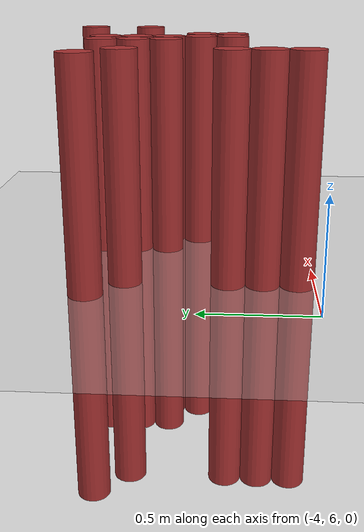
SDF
<sdf version="1.6">
 <world name="default">
  <model name="ground_plane">
   <static>1</static>
   <link name="link">
    <collision name="collision">
     <geometry><plane><normal>0 0 1</normal><size>100 100</size></plane></geometry>
     <surface><friction><ode><mu>100</mu><mu2>50</mu2></ode></friction></surface>
    </collision>
    <visual name="visual">
     <cast_shadows>0</cast_shadows>
     <geometry><plane><normal>0 0 1</normal><size>100 100</size></plane></geometry>
     <material>
      <script><uri>file://media/materials/scripts/gazebo.material</uri><name>Gazebo/Grey</name></script>
     </material>
    </visual>
   </link>
  </model>
  <model name="unit_cylinder_150">
   <static>1</static>
   <pose>-3.825000 6.975000 0.000000 0.000000 0.000000 0.000000</pose>
   <link name="link">
    <inertial>
     <mass>1</mass>
     <inertia><ixx>0.145833</ixx><ixy>0</ixy><ixz>0</ixz><iyy>0.145833</iyy><iyz>0</iyz><izz>0.125</izz></inertia>
    </inertial>
    <collision name="collision">
     <geometry><cylinder><radius>0.075000</radius><length>2</length></cylinder></geometry>
    </collision>
    <visual name="visual">
     <geometry><cylinder><radius>0.075000</radius><length>2</length></cylinder></geometry>
     <material>
      <ambient>0.648000 0.192000 0.192000 1</ambient>
      <diffuse>0.648000 0.192000 0.192000 1</diffuse>
     </material>
     <material>
      <script><name>Gazebo/Grey</name><uri>file://media/materials/scripts/gazebo.material</uri></script>
     </material>
    </visual>
   </link>
  </model>
  <model name="unit_cylinder_154">
   <static>1</static>
   <pose>-3.675000 6.075000 0.000000 0.000000 0.000000 0.000000</pose>
   <link name="link">
    <inertial>
     <mass>1</mass>
     <inertia><ixx>0.145833</ixx><ixy>0</ixy><ixz>0</ixz><iyy>0.145833</iyy><iyz>0</iyz><izz>0.125</izz></inertia>
    </inertial>
    <collision name="collision">
     <geometry><cylinder><radius>0.075000</radius><length>2</length></cylinder></geometry>
    </collision>
    <visual name="visual">
     <geometry><cylinder><radius>0.075000</radius><length>2</length></cylinder></geometry>
     <material>
      <ambient>0.648000 0.192000 0.192000 1</ambient>
      <diffuse>0.648000 0.192000 0.192000 1</diffuse>
     </material>
     <material>
      <script><name>Gazebo/Grey</name><uri>file://media/materials/scripts/gazebo.material</uri></script>
     </material>
    </visual>
   </link>
  </model>
  <model name="unit_cylinder_155">
   <static>1</static>
   <pose>-3.675000 6.225000 0.000000 0.000000 0.000000 0.000000</pose>
   <link name="link">
    <inertial>
     <mass>1</mass>
     <inertia><ixx>0.145833</ixx><ixy>0</ixy><ixz>0</ixz><iyy>0.145833</iyy><iyz>0</iyz><izz>0.125</izz></inertia>
    </inertial>
    <collision name="collision">
     <geometry><cylinder><radius>0.075000</radius><length>2</length></cylinder></geometry>
    </collision>
    <visual name="visual">
     <geometry><cylinder><radius>0.075000</radius><length>2</length></cylinder></geometry>
     <material>
      <ambient>0.648000 0.192000 0.192000 1</ambient>
      <diffuse>0.648000 0.192000 0.192000 1</diffuse>
     </material>
     <material>
      <script><name>Gazebo/Grey</name><uri>file://media/materials/scripts/gazebo.material</uri></script>
     </material>
    </visual>
   </link>
  </model>
  <model name="unit_cylinder_156">
   <static>1</static>
   <pose>-3.675000 6.375000 0.000000 0.000000 0.000000 0.000000</pose>
   <link name="link">
    <inertial>
     <mass>1</mass>
     <inertia><ixx>0.145833</ixx><ixy>0</ixy><ixz>0</ixz><iyy>0.145833</iyy><iyz>0</iyz><izz>0.125</izz></inertia>
    </inertial>
    <collision name="collision">
     <geometry><cylinder><radius>0.075000</radius><length>2</length></cylinder></geometry>
    </collision>
    <visual name="visual">
     <geometry><cylinder><radius>0.075000</radius><length>2</length></cylinder></geometry>
     <material>
      <ambient>0.648000 0.192000 0.192000 1</ambient>
      <diffuse>0.648000 0.192000 0.192000 1</diffuse>
     </material>
     <material>
      <script><name>Gazebo/Grey</name><uri>file://media/materials/scripts/gazebo.material</uri></script>
     </material>
    </visual>
   </link>
  </model>
  <model name="unit_cylinder_157">
   <static>1</static>
   <pose>-3.675000 6.825000 0.000000 0.000000 0.000000 0.000000</pose>
   <link name="link">
    <inertial>
     <mass>1</mass>
     <inertia><ixx>0.145833</ixx><ixy>0</ixy><ixz>0</ixz><iyy>0.145833</iyy><iyz>0</iyz><izz>0.125</izz></inertia>
    </inertial>
    <collision name="collision">
     <geometry><cylinder><radius>0.075000</radius><length>2</length></cylinder></geometry>
    </collision>
    <visual name="visual">
     <geometry><cylinder><radius>0.075000</radius><length>2</length></cylinder></geometry>
     <material>
      <ambient>0.648000 0.192000 0.192000 1</ambient>
      <diffuse>0.648000 0.192000 0.192000 1</diffuse>
     </material>
     <material>
      <script><name>Gazebo/Grey</name><uri>file://media/materials/scripts/gazebo.material</uri></script>
     </material>
    </visual>
   </link>
  </model>
  <model name="unit_cylinder_165">
   <static>1</static>
   <pose>-3.225000 6.675000 0.000000 0.000000 0.000000 0.000000</pose>
   <link name="link">
    <inertial>
     <mass>1</mass>
     <inertia><ixx>0.145833</ixx><ixy>0</ixy><ixz>0</ixz><iyy>0.145833</iyy><iyz>0</iyz><izz>0.125</izz></inertia>
    </inertial>
    <collision name="collision">
     <geometry><cylinder><radius>0.075000</radius><length>2</length></cylinder></geometry>
    </collision>
    <visual name="visual">
     <geometry><cylinder><radius>0.075000</radius><length>2</length></cylinder></geometry>
     <material>
      <ambient>0.648000 0.192000 0.192000 1</ambient>
      <diffuse>0.648000 0.192000 0.192000 1</diffuse>
     </material>
     <material>
      <script><name>Gazebo/Grey</name><uri>file://media/materials/scripts/gazebo.material</uri></script>
     </material>
    </visual>
   </link>
  </model>
  <model name="unit_cylinder_166">
   <static>1</static>
   <pose>-3.225000 6.825000 0.000000 0.000000 0.000000 0.000000</pose>
   <link name="link">
    <inertial>
     <mass>1</mass>
     <inertia><ixx>0.145833</ixx><ixy>0</ixy><ixz>0</ixz><iyy>0.145833</iyy><iyz>0</iyz><izz>0.125</izz></inertia>
    </inertial>
    <collision name="collision">
     <geometry><cylinder><radius>0.075000</radius><length>2</length></cylinder></geometry>
    </collision>
    <visual name="visual">
     <geometry><cylinder><radius>0.075000</radius><length>2</length></cylinder></geometry>
     <material>
      <ambient>0.648000 0.192000 0.192000 1</ambient>
      <diffuse>0.648000 0.192000 0.192000 1</diffuse>
     </material>
     <material>
      <script><name>Gazebo/Grey</name><uri>file://media/materials/scripts/gazebo.material</uri></script>
     </material>
    </visual>
   </link>
  </model>
  <model name="unit_cylinder_167">
   <static>1</static>
   <pose>-3.225000 6.975000 0.000000 0.000000 0.000000 0.000000</pose>
   <link name="link">
    <inertial>
     <mass>1</mass>
     <inertia><ixx>0.145833</ixx><ixy>0</ixy><ixz>0</ixz><iyy>0.145833</iyy><iyz>0</iyz><izz>0.125</izz></inertia>
    </inertial>
    <collision name="collision">
     <geometry><cylinder><radius>0.075000</radius><length>2</length></cylinder></geometry>
    </collision>
    <visual name="visual">
     <geometry><cylinder><radius>0.075000</radius><length>2</length></cylinder></geometry>
     <material>
      <ambient>0.648000 0.192000 0.192000 1</ambient>
      <diffuse>0.648000 0.192000 0.192000 1</diffuse>
     </material>
     <material>
      <script><name>Gazebo/Grey</name><uri>file://media/materials/scripts/gazebo.material</uri></script>
     </material>
    </visual>
   </link>
  </model>
  <model name="unit_cylinder_173">
   <static>1</static>
   <pose>-3.075000 6.375000 0.000000 0.000000 0.000000 0.000000</pose>
   <link name="link">
    <inertial>
     <mass>1</mass>
     <inertia><ixx>0.145833</ixx><ixy>0</ixy><ixz>0</ixz><iyy>0.145833</iyy><iyz>0</iyz><izz>0.125</izz></inertia>
    </inertial>
    <collision name="collision">
     <geometry><cylinder><radius>0.075000</radius><length>2</length></cylinder></geometry>
    </collision>
    <visual name="visual">
     <geometry><cylinder><radius>0.075000</radius><length>2</length></cylinder></geometry>
     <material>
      <ambient>0.648000 0.192000 0.192000 1</ambient>
      <diffuse>0.648000 0.192000 0.192000 1</diffuse>
     </material>
     <material>
      <script><name>Gazebo/Grey</name><uri>file://media/materials/scripts/gazebo.material</uri></script>
     </material>
    </visual>
   </link>
  </model>
  <model name="unit_cylinder_174">
   <static>1</static>
   <pose>-3.075000 6.525000 0.000000 0.000000 0.000000 0.000000</pose>
   <link name="link">
    <inertial>
     <mass>1</mass>
     <inertia><ixx>0.145833</ixx><ixy>0</ixy><ixz>0</ixz><iyy>0.145833</iyy><iyz>0</iyz><izz>0.125</izz></inertia>
    </inertial>
    <collision name="collision">
     <geometry><cylinder><radius>0.075000</radius><length>2</length></cylinder></geometry>
    </collision>
    <visual name="visual">
     <geometry><cylinder><radius>0.075000</radius><length>2</length></cylinder></geometry>
     <material>
      <ambient>0.648000 0.192000 0.192000 1</ambient>
      <diffuse>0.648000 0.192000 0.192000 1</diffuse>
     </material>
     <material>
      <script><name>Gazebo/Grey</name><uri>file://media/materials/scripts/gazebo.material</uri></script>
     </material>
    </visual>
   </link>
  </model>
  <model name="unit_cylinder_175">
   <static>1</static>
   <pose>-3.075000 6.675000 0.000000 0.000000 0.000000 0.000000</pose>
   <link name="link">
    <inertial>
     <mass>1</mass>
     <inertia><ixx>0.145833</ixx><ixy>0</ixy><ixz>0</ixz><iyy>0.145833</iyy><iyz>0</iyz><izz>0.125</izz></inertia>
    </inertial>
    <collision name="collision">
     <geometry><cylinder><radius>0.075000</radius><length>2</length></cylinder></geometry>
    </collision>
    <visual name="visual">
     <geometry><cylinder><radius>0.075000</radius><length>2</length></cylinder></geometry>
     <material>
      <ambient>0.648000 0.192000 0.192000 1</ambient>
      <diffuse>0.648000 0.192000 0.192000 1</diffuse>
     </material>
     <material>
      <script><name>Gazebo/Grey</name><uri>file://media/materials/scripts/gazebo.material</uri></script>
     </material>
    </visual>
   </link>
  </model>
  <model name="unit_cylinder_176">
   <static>1</static>
   <pose>-3.075000 6.825000 0.000000 0.000000 0.000000 0.000000</pose>
   <link name="link">
    <inertial>
     <mass>1</mass>
     <inertia><ixx>0.145833</ixx><ixy>0</ixy><ixz>0</ixz><iyy>0.145833</iyy><iyz>0</iyz><izz>0.125</izz></inertia>
    </inertial>
    <collision name="collision">
     <geometry><cylinder><radius>0.075000</radius><length>2</length></cylinder></geometry>
    </collision>
    <visual name="visual">
     <geometry><cylinder><radius>0.075000</radius><length>2</length></cylinder></geometry>
     <material>
      <ambient>0.648000 0.192000 0.192000 1</ambient>
      <diffuse>0.648000 0.192000 0.192000 1</diffuse>
     </material>
     <material>
      <script><name>Gazebo/Grey</name><uri>file://media/materials/scripts/gazebo.material</uri></script>
     </material>
    </visual>
   </link>
  </model>
  <model name="unit_cylinder_177">
   <static>1</static>
   <pose>-3.075000 6.975000 0.000000 0.000000 0.000000 0.000000</pose>
   <link name="link">
    <inertial>
     <mass>1</mass>
     <inertia><ixx>0.145833</ixx><ixy>0</ixy><ixz>0</ixz><iyy>0.145833</iyy><iyz>0</iyz><izz>0.125</izz></inertia>
    </inertial>
    <collision name="collision">
     <geometry><cylinder><radius>0.075000</radius><length>2</length></cylinder></geometry>
    </collision>
    <visual name="visual">
     <geometry><cylinder><radius>0.075000</radius><length>2</length></cylinder></geometry>
     <material>
      <ambient>0.648000 0.192000 0.192000 1</ambient>
      <diffuse>0.648000 0.192000 0.192000 1</diffuse>
     </material>
     <material>
      <script><name>Gazebo/Grey</name><uri>file://media/materials/scripts/gazebo.material</uri></script>
     </material>
    </visual>
   </link>
  </model>
  <model name="unit_cylinder_181">
   <static>1</static>
   <pose>-2.925000 6.375000 0.000000 0.000000 0.000000 0.000000</pose>
   <link name="link">
    <inertial>
     <mass>1</mass>
     <inertia><ixx>0.145833</ixx><ixy>0</ixy><ixz>0</ixz><iyy>0.145833</iyy><iyz>0</iyz><izz>0.125</izz></inertia>
    </inertial>
    <collision name="collision">
     <geometry><cylinder><radius>0.075000</radius><length>2</length></cylinder></geometry>
    </collision>
    <visual name="visual">
     <geometry><cylinder><radius>0.075000</radius><length>2</length></cylinder></geometry>
     <material>
      <ambient>0.648000 0.192000 0.192000 1</ambient>
      <diffuse>0.648000 0.192000 0.192000 1</diffuse>
     </material>
     <material>
      <script><name>Gazebo/Grey</name><uri>file://media/materials/scripts/gazebo.material</uri></script>
     </material>
    </visual>
   </link>
  </model>
  <model name="unit_cylinder_182">
   <static>1</static>
   <pose>-2.925000 6.525000 0.000000 0.000000 0.000000 0.000000</pose>
   <link name="link">
    <inertial>
     <mass>1</mass>
     <inertia><ixx>0.145833</ixx><ixy>0</ixy><ixz>0</ixz><iyy>0.145833</iyy><iyz>0</iyz><izz>0.125</izz></inertia>
    </inertial>
    <collision name="collision">
     <geometry><cylinder><radius>0.075000</radius><length>2</length></cylinder></geometry>
    </collision>
    <visual name="visual">
     <geometry><cylinder><radius>0.075000</radius><length>2</length></cylinder></geometry>
     <material>
      <ambient>0.648000 0.192000 0.192000 1</ambient>
      <diffuse>0.648000 0.192000 0.192000 1</diffuse>
     </material>
     <material>
      <script><name>Gazebo/Grey</name><uri>file://media/materials/scripts/gazebo.material</uri></script>
     </material>
    </visual>
   </link>
  </model>
  <model name="unit_cylinder_190">
   <static>1</static>
   <pose>-2.475000 6.825000 0.000000 0.000000 0.000000 0.000000</pose>
   <link name="link">
    <inertial>
     <mass>1</mass>
     <inertia><ixx>0.145833</ixx><ixy>0</ixy><ixz>0</ixz><iyy>0.145833</iyy><iyz>0</iyz><izz>0.125</izz></inertia>
    </inertial>
    <collision name="collision">
     <geometry><cylinder><radius>0.075000</radius><length>2</length></cylinder></geometry>
    </collision>
    <visual name="visual">
     <geometry><cylinder><radius>0.075000</radius><length>2</length></cylinder></geometry>
     <material>
      <ambient>0.648000 0.192000 0.192000 1</ambient>
      <diffuse>0.648000 0.192000 0.192000 1</diffuse>
     </material>
     <material>
      <script><name>Gazebo/Grey</name><uri>file://media/materials/scripts/gazebo.material</uri></script>
     </material>
    </visual>
   </link>
  </model>
  <model name="unit_cylinder_191">
   <static>1</static>
   <pose>-2.475000 7.125000 0.000000 0.000000 0.000000 0.000000</pose>
   <link name="link">
    <inertial>
     <mass>1</mass>
     <inertia><ixx>0.145833</ixx><ixy>0</ixy><ixz>0</ixz><iyy>0.145833</iyy><iyz>0</iyz><izz>0.125</izz></inertia>
    </inertial>
    <collision name="collision">
     <geometry><cylinder><radius>0.075000</radius><length>2</length></cylinder></geometry>
    </collision>
    <visual name="visual">
     <geometry><cylinder><radius>0.075000</radius><length>2</length></cylinder></geometry>
     <material>
      <ambient>0.648000 0.192000 0.192000 1</ambient>
      <diffuse>0.648000 0.192000 0.192000 1</diffuse>
     </material>
     <material>
      <script><name>Gazebo/Grey</name><uri>file://media/materials/scripts/gazebo.material</uri></script>
     </material>
    </visual>
   </link>
  </model>
 </world>
</sdf>
